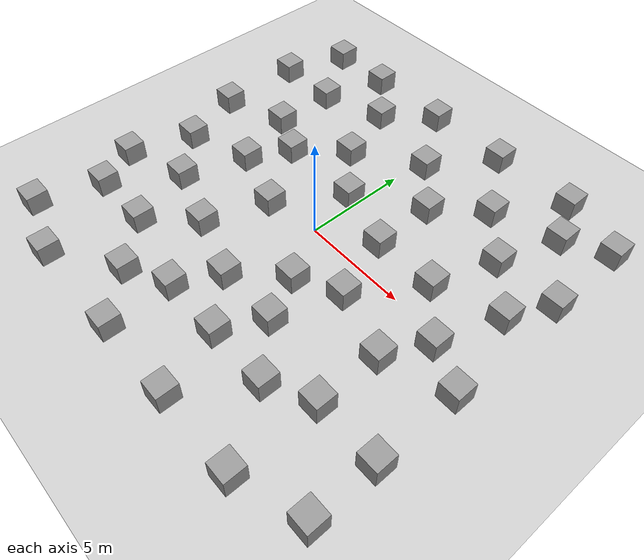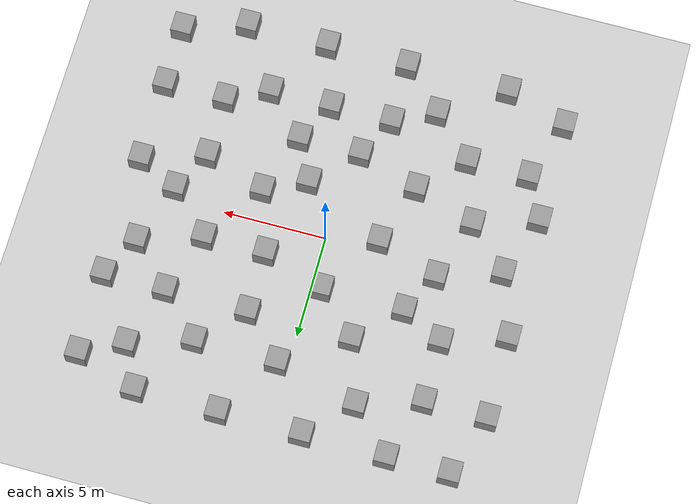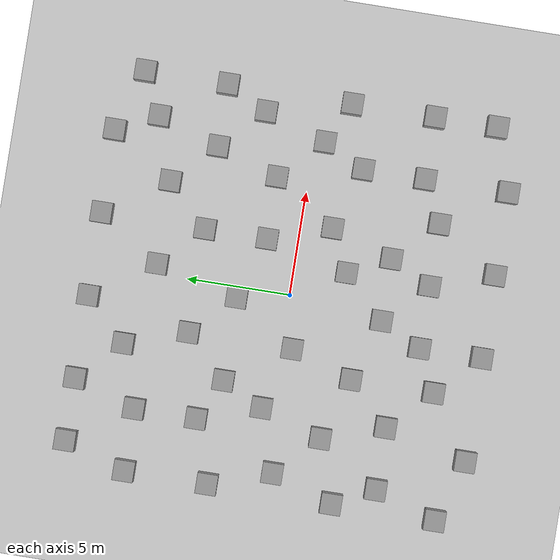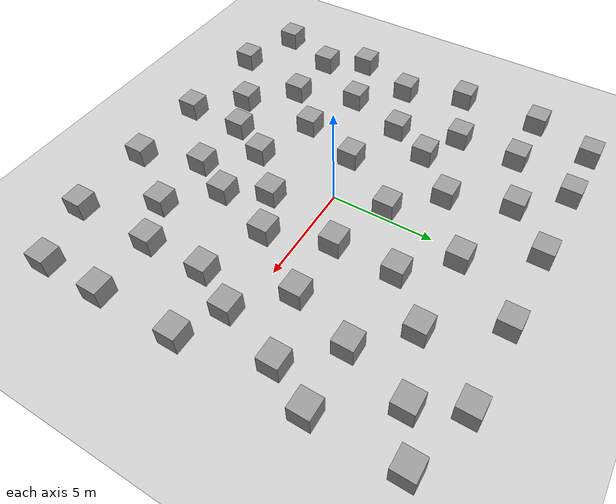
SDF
<sdf version="1.6">
 <world name="default">
  <light name="sun" type="directional">
   <pose>0 0 10 0 0 0</pose>
   <diffuse>0.8 0.8 0.8 1</diffuse>
   <specular>0.1 0.1 0.1 1</specular>
   <attenuation>
    <range>1000</range>
    <constant>0.9</constant>
    <linear>0.01</linear>
    <quadratic>0.001</quadratic>
   </attenuation>
   <direction>0.5 0.5 -1</direction>
  </light>
  <model name="ground_plane">
   <static>1</static>
   <link name="link">
    <collision name="collision">
     <geometry><plane><normal>0 0 1</normal><size>0.1 0.1</size></plane></geometry>
     <surface><friction><ode><mu>100</mu><mu2>50</mu2></ode></friction></surface>
    </collision>
    <visual name="visual">
     <cast_shadows>0</cast_shadows>
     <geometry><plane><normal>0 0 1</normal><size>0.1 0.1</size></plane></geometry>
     <material>
      <script><uri>file://media/materials/scripts/gazebo.material</uri><name>Gazebo/Grey</name></script>
     </material>
    </visual>
   </link>
  </model>
  <gravity>0 0 -9.8</gravity>
  <magnetic_field>0 0 0</magnetic_field>
  <atmosphere type="adiabatic"/>
  <physics name="default_physics" default="0" type="ode">
   <max_step_size>0.001</max_step_size>
   <real_time_factor>1</real_time_factor>
   <real_time_update_rate>1000</real_time_update_rate>
  </physics>
  <scene><ambient>0.4 0.4 0.4 1</ambient><background>0.7 0.7 0.7 1</background><shadows>1</shadows></scene>
  <spherical_coordinates>
   <surface_model>EARTH_WGS84</surface_model>
   <latitude_deg>0</latitude_deg>
   <longitude_deg>0</longitude_deg>
   <elevation>0</elevation>
   <heading_deg>0</heading_deg>
  </spherical_coordinates>
  <model name="unit_box_1">
   <pose>-0.5 2.5 0.5 0 0 0</pose>
   <link name="link">
    <inertial>
     <mass>1</mass>
     <inertia>
      <ixx>0.166667</ixx>
      <ixy>0</ixy>
      <ixz>0</ixz>
      <iyy>0.166667</iyy>
      <iyz>0</iyz>
      <izz>0.166667</izz>
     </inertia>
    </inertial>
    <collision name="collision"><geometry><box><size>1 1 1</size></box></geometry></collision>
    <visual name="visual">
     <geometry><box><size>1 1 1</size></box></geometry>
     <material>
      <script><name>Gazebo/Grey</name><uri>file://media/materials/scripts/gazebo.material</uri></script>
     </material>
    </visual>
   </link>
  </model>
  <model name="unit_box_2">
   <pose>-2.5 -0.5 0.5 0 0 0</pose>
   <link name="link">
    <inertial>
     <mass>1</mass>
     <inertia>
      <ixx>0.166667</ixx>
      <ixy>0</ixy>
      <ixz>0</ixz>
      <iyy>0.166667</iyy>
      <iyz>0</iyz>
      <izz>0.166667</izz>
     </inertia>
    </inertial>
    <collision name="collision"><geometry><box><size>1 1 1</size></box></geometry></collision>
    <visual name="visual">
     <geometry><box><size>1 1 1</size></box></geometry>
     <material>
      <script><name>Gazebo/Grey</name><uri>file://media/materials/scripts/gazebo.material</uri></script>
     </material>
    </visual>
   </link>
  </model>
  <model name="unit_box_3">
   <pose>1.5 -2.5 0.5 0 0 0</pose>
   <link name="link">
    <inertial>
     <mass>1</mass>
     <inertia>
      <ixx>0.166667</ixx>
      <ixy>0</ixy>
      <ixz>0</ixz>
      <iyy>0.166667</iyy>
      <iyz>0</iyz>
      <izz>0.166667</izz>
     </inertia>
    </inertial>
    <collision name="collision"><geometry><box><size>1 1 1</size></box></geometry></collision>
    <visual name="visual">
     <geometry><box><size>1 1 1</size></box></geometry>
     <material>
      <script><name>Gazebo/Grey</name><uri>file://media/materials/scripts/gazebo.material</uri></script>
     </material>
    </visual>
   </link>
  </model>
  <model name="unit_box_4">
   <pose>-0.5 -4.5 0.5 0 0 0</pose>
   <link name="link">
    <inertial>
     <mass>1</mass>
     <inertia>
      <ixx>0.166667</ixx>
      <ixy>0</ixy>
      <ixz>0</ixz>
      <iyy>0.166667</iyy>
      <iyz>0</iyz>
      <izz>0.166667</izz>
     </inertia>
    </inertial>
    <collision name="collision"><geometry><box><size>1 1 1</size></box></geometry></collision>
    <visual name="visual">
     <geometry><box><size>1 1 1</size></box></geometry>
     <material>
      <script><name>Gazebo/Grey</name><uri>file://media/materials/scripts/gazebo.material</uri></script>
     </material>
    </visual>
   </link>
  </model>
  <model name="unit_box_5">
   <pose>-3.5 -3.5 0.5 0 0 0</pose>
   <link name="link">
    <inertial>
     <mass>1</mass>
     <inertia>
      <ixx>0.166667</ixx>
      <ixy>0</ixy>
      <ixz>0</ixz>
      <iyy>0.166667</iyy>
      <iyz>0</iyz>
      <izz>0.166667</izz>
     </inertia>
    </inertial>
    <collision name="collision"><geometry><box><size>1 1 1</size></box></geometry></collision>
    <visual name="visual">
     <geometry><box><size>1 1 1</size></box></geometry>
     <material>
      <script><name>Gazebo/Grey</name><uri>file://media/materials/scripts/gazebo.material</uri></script>
     </material>
    </visual>
   </link>
  </model>
  <model name="unit_box_6">
   <pose>5.5 1.5 0.5 0 0 0</pose>
   <link name="link">
    <inertial>
     <mass>1</mass>
     <inertia>
      <ixx>0.166667</ixx>
      <ixy>0</ixy>
      <ixz>0</ixz>
      <iyy>0.166667</iyy>
      <iyz>0</iyz>
      <izz>0.166667</izz>
     </inertia>
    </inertial>
    <collision name="collision"><geometry><box><size>1 1 1</size></box></geometry></collision>
    <visual name="visual">
     <geometry><box><size>1 1 1</size></box></geometry>
     <material>
      <script><name>Gazebo/Grey</name><uri>file://media/materials/scripts/gazebo.material</uri></script>
     </material>
    </visual>
   </link>
  </model>
  <model name="unit_box_7">
   <pose>6.5 -2.5 0.5 0 0 0</pose>
   <link name="link">
    <inertial>
     <mass>1</mass>
     <inertia>
      <ixx>0.166667</ixx>
      <ixy>0</ixy>
      <ixz>0</ixz>
      <iyy>0.166667</iyy>
      <iyz>0</iyz>
      <izz>0.166667</izz>
     </inertia>
    </inertial>
    <collision name="collision"><geometry><box><size>1 1 1</size></box></geometry></collision>
    <visual name="visual">
     <geometry><box><size>1 1 1</size></box></geometry>
     <material>
      <script><name>Gazebo/Grey</name><uri>file://media/materials/scripts/gazebo.material</uri></script>
     </material>
    </visual>
   </link>
  </model>
  <model name="unit_box_8">
   <pose>7.5 -0.5 0.5 0 0 0</pose>
   <link name="link">
    <inertial>
     <mass>1</mass>
     <inertia>
      <ixx>0.166667</ixx>
      <ixy>0</ixy>
      <ixz>0</ixz>
      <iyy>0.166667</iyy>
      <iyz>0</iyz>
      <izz>0.166667</izz>
     </inertia>
    </inertial>
    <collision name="collision"><geometry><box><size>1 1 1</size></box></geometry></collision>
    <visual name="visual">
     <geometry><box><size>1 1 1</size></box></geometry>
     <material>
      <script><name>Gazebo/Grey</name><uri>file://media/materials/scripts/gazebo.material</uri></script>
     </material>
    </visual>
   </link>
  </model>
  <model name="unit_box_9">
   <pose>-4.5 2.5 0.5 0 0 0</pose>
   <link name="link">
    <inertial>
     <mass>1</mass>
     <inertia>
      <ixx>0.166667</ixx>
      <ixy>0</ixy>
      <ixz>0</ixz>
      <iyy>0.166667</iyy>
      <iyz>0</iyz>
      <izz>0.166667</izz>
     </inertia>
    </inertial>
    <collision name="collision"><geometry><box><size>1 1 1</size></box></geometry></collision>
    <visual name="visual">
     <geometry><box><size>1 1 1</size></box></geometry>
     <material>
      <script><name>Gazebo/Grey</name><uri>file://media/materials/scripts/gazebo.material</uri></script>
     </material>
    </visual>
   </link>
  </model>
  <model name="unit_box_10">
   <pose>-2.5 4.5 0.5 0 0 0</pose>
   <link name="link">
    <inertial>
     <mass>1</mass>
     <inertia>
      <ixx>0.166667</ixx>
      <ixy>0</ixy>
      <ixz>0</ixz>
      <iyy>0.166667</iyy>
      <iyz>0</iyz>
      <izz>0.166667</izz>
     </inertia>
    </inertial>
    <collision name="collision"><geometry><box><size>1 1 1</size></box></geometry></collision>
    <visual name="visual">
     <geometry><box><size>1 1 1</size></box></geometry>
     <material>
      <script><name>Gazebo/Grey</name><uri>file://media/materials/scripts/gazebo.material</uri></script>
     </material>
    </visual>
   </link>
  </model>
  <model name="unit_box_11">
   <pose>2.5 4.5 0.5 0 0 0</pose>
   <link name="link">
    <inertial>
     <mass>1</mass>
     <inertia>
      <ixx>0.166667</ixx>
      <ixy>0</ixy>
      <ixz>0</ixz>
      <iyy>0.166667</iyy>
      <iyz>0</iyz>
      <izz>0.166667</izz>
     </inertia>
    </inertial>
    <collision name="collision"><geometry><box><size>1 1 1</size></box></geometry></collision>
    <visual name="visual">
     <geometry><box><size>1 1 1</size></box></geometry>
     <material>
      <script><name>Gazebo/Grey</name><uri>file://media/materials/scripts/gazebo.material</uri></script>
     </material>
    </visual>
   </link>
  </model>
  <model name="unit_box_12">
   <pose>6.5 4.5 0.5 0 0 0</pose>
   <link name="link">
    <inertial>
     <mass>1</mass>
     <inertia>
      <ixx>0.166667</ixx>
      <ixy>0</ixy>
      <ixz>0</ixz>
      <iyy>0.166667</iyy>
      <iyz>0</iyz>
      <izz>0.166667</izz>
     </inertia>
    </inertial>
    <collision name="collision"><geometry><box><size>1 1 1</size></box></geometry></collision>
    <visual name="visual">
     <geometry><box><size>1 1 1</size></box></geometry>
     <material>
      <script><name>Gazebo/Grey</name><uri>file://media/materials/scripts/gazebo.material</uri></script>
     </material>
    </visual>
   </link>
  </model>
  <model name="unit_box_13">
   <pose>4.5 6.5 0.5 0 0 0</pose>
   <link name="link">
    <inertial>
     <mass>1</mass>
     <inertia>
      <ixx>0.166667</ixx>
      <ixy>0</ixy>
      <ixz>0</ixz>
      <iyy>0.166667</iyy>
      <iyz>0</iyz>
      <izz>0.166667</izz>
     </inertia>
    </inertial>
    <collision name="collision"><geometry><box><size>1 1 1</size></box></geometry></collision>
    <visual name="visual">
     <geometry><box><size>1 1 1</size></box></geometry>
     <material>
      <script><name>Gazebo/Grey</name><uri>file://media/materials/scripts/gazebo.material</uri></script>
     </material>
    </visual>
   </link>
  </model>
  <model name="unit_box_14">
   <pose>8.5 2.5 0.5 0 0 0</pose>
   <link name="link">
    <inertial>
     <mass>1</mass>
     <inertia>
      <ixx>0.166667</ixx>
      <ixy>0</ixy>
      <ixz>0</ixz>
      <iyy>0.166667</iyy>
      <iyz>0</iyz>
      <izz>0.166667</izz>
     </inertia>
    </inertial>
    <collision name="collision"><geometry><box><size>1 1 1</size></box></geometry></collision>
    <visual name="visual">
     <geometry><box><size>1 1 1</size></box></geometry>
     <material>
      <script><name>Gazebo/Grey</name><uri>file://media/materials/scripts/gazebo.material</uri></script>
     </material>
    </visual>
   </link>
  </model>
  <model name="unit_box_15">
   <pose>9.5 4.5 0.5 0 0 0</pose>
   <link name="link">
    <inertial>
     <mass>1</mass>
     <inertia>
      <ixx>0.166667</ixx>
      <ixy>0</ixy>
      <ixz>0</ixz>
      <iyy>0.166667</iyy>
      <iyz>0</iyz>
      <izz>0.166667</izz>
     </inertia>
    </inertial>
    <collision name="collision"><geometry><box><size>1 1 1</size></box></geometry></collision>
    <visual name="visual">
     <geometry><box><size>1 1 1</size></box></geometry>
     <material>
      <script><name>Gazebo/Grey</name><uri>file://media/materials/scripts/gazebo.material</uri></script>
     </material>
    </visual>
   </link>
  </model>
  <model name="unit_box_16">
   <pose>9.5 8.5 0.5 0 0 0</pose>
   <link name="link">
    <inertial>
     <mass>1</mass>
     <inertia>
      <ixx>0.166667</ixx>
      <ixy>0</ixy>
      <ixz>0</ixz>
      <iyy>0.166667</iyy>
      <iyz>0</iyz>
      <izz>0.166667</izz>
     </inertia>
    </inertial>
    <collision name="collision"><geometry><box><size>1 1 1</size></box></geometry></collision>
    <visual name="visual">
     <geometry><box><size>1 1 1</size></box></geometry>
     <material>
      <script><name>Gazebo/Grey</name><uri>file://media/materials/scripts/gazebo.material</uri></script>
     </material>
    </visual>
   </link>
  </model>
  <model name="unit_box_17">
   <pose>6.5 9.5 0.5 0 0 0</pose>
   <link name="link">
    <inertial>
     <mass>1</mass>
     <inertia>
      <ixx>0.166667</ixx>
      <ixy>0</ixy>
      <ixz>0</ixz>
      <iyy>0.166667</iyy>
      <iyz>0</iyz>
      <izz>0.166667</izz>
     </inertia>
    </inertial>
    <collision name="collision"><geometry><box><size>1 1 1</size></box></geometry></collision>
    <visual name="visual">
     <geometry><box><size>1 1 1</size></box></geometry>
     <material>
      <script><name>Gazebo/Grey</name><uri>file://media/materials/scripts/gazebo.material</uri></script>
     </material>
    </visual>
   </link>
  </model>
  <model name="unit_box_18">
   <pose>7.5 7.5 0.5 0 0 0</pose>
   <link name="link">
    <inertial>
     <mass>1</mass>
     <inertia>
      <ixx>0.166667</ixx>
      <ixy>0</ixy>
      <ixz>0</ixz>
      <iyy>0.166667</iyy>
      <iyz>0</iyz>
      <izz>0.166667</izz>
     </inertia>
    </inertial>
    <collision name="collision"><geometry><box><size>1 1 1</size></box></geometry></collision>
    <visual name="visual">
     <geometry><box><size>1 1 1</size></box></geometry>
     <material>
      <script><name>Gazebo/Grey</name><uri>file://media/materials/scripts/gazebo.material</uri></script>
     </material>
    </visual>
   </link>
  </model>
  <model name="unit_box_19">
   <pose>2.5 9.5 0.5 0 0 0</pose>
   <link name="link">
    <inertial>
     <mass>1</mass>
     <inertia>
      <ixx>0.166667</ixx>
      <ixy>0</ixy>
      <ixz>0</ixz>
      <iyy>0.166667</iyy>
      <iyz>0</iyz>
      <izz>0.166667</izz>
     </inertia>
    </inertial>
    <collision name="collision"><geometry><box><size>1 1 1</size></box></geometry></collision>
    <visual name="visual">
     <geometry><box><size>1 1 1</size></box></geometry>
     <material>
      <script><name>Gazebo/Grey</name><uri>file://media/materials/scripts/gazebo.material</uri></script>
     </material>
    </visual>
   </link>
  </model>
  <model name="unit_box_20">
   <pose>-1.5 9.5 0.5 0 0 0</pose>
   <link name="link">
    <inertial>
     <mass>1</mass>
     <inertia>
      <ixx>0.166667</ixx>
      <ixy>0</ixy>
      <ixz>0</ixz>
      <iyy>0.166667</iyy>
      <iyz>0</iyz>
      <izz>0.166667</izz>
     </inertia>
    </inertial>
    <collision name="collision"><geometry><box><size>1 1 1</size></box></geometry></collision>
    <visual name="visual">
     <geometry><box><size>1 1 1</size></box></geometry>
     <material>
      <script><name>Gazebo/Grey</name><uri>file://media/materials/scripts/gazebo.material</uri></script>
     </material>
    </visual>
   </link>
  </model>
  <model name="unit_box_21">
   <pose>0.5 6.5 0.5 0 0 0</pose>
   <link name="link">
    <inertial>
     <mass>1</mass>
     <inertia>
      <ixx>0.166667</ixx>
      <ixy>0</ixy>
      <ixz>0</ixz>
      <iyy>0.166667</iyy>
      <iyz>0</iyz>
      <izz>0.166667</izz>
     </inertia>
    </inertial>
    <collision name="collision"><geometry><box><size>1 1 1</size></box></geometry></collision>
    <visual name="visual">
     <geometry><box><size>1 1 1</size></box></geometry>
     <material>
      <script><name>Gazebo/Grey</name><uri>file://media/materials/scripts/gazebo.material</uri></script>
     </material>
    </visual>
   </link>
  </model>
  <model name="unit_box_22">
   <pose>-3.5 7.5 0.5 0 0 0</pose>
   <link name="link">
    <inertial>
     <mass>1</mass>
     <inertia>
      <ixx>0.166667</ixx>
      <ixy>0</ixy>
      <ixz>0</ixz>
      <iyy>0.166667</iyy>
      <iyz>0</iyz>
      <izz>0.166667</izz>
     </inertia>
    </inertial>
    <collision name="collision"><geometry><box><size>1 1 1</size></box></geometry></collision>
    <visual name="visual">
     <geometry><box><size>1 1 1</size></box></geometry>
     <material>
      <script><name>Gazebo/Grey</name><uri>file://media/materials/scripts/gazebo.material</uri></script>
     </material>
    </visual>
   </link>
  </model>
  <model name="unit_box_23">
   <pose>-5.5 9.5 0.5 0 0 0</pose>
   <link name="link">
    <inertial>
     <mass>1</mass>
     <inertia>
      <ixx>0.166667</ixx>
      <ixy>0</ixy>
      <ixz>0</ixz>
      <iyy>0.166667</iyy>
      <iyz>0</iyz>
      <izz>0.166667</izz>
     </inertia>
    </inertial>
    <collision name="collision"><geometry><box><size>1 1 1</size></box></geometry></collision>
    <visual name="visual">
     <geometry><box><size>1 1 1</size></box></geometry>
     <material>
      <script><name>Gazebo/Grey</name><uri>file://media/materials/scripts/gazebo.material</uri></script>
     </material>
    </visual>
   </link>
  </model>
  <model name="unit_box_24">
   <pose>-8.5 9.5 0.5 0 0 0</pose>
   <link name="link">
    <inertial>
     <mass>1</mass>
     <inertia>
      <ixx>0.166667</ixx>
      <ixy>0</ixy>
      <ixz>0</ixz>
      <iyy>0.166667</iyy>
      <iyz>0</iyz>
      <izz>0.166667</izz>
     </inertia>
    </inertial>
    <collision name="collision"><geometry><box><size>1 1 1</size></box></geometry></collision>
    <visual name="visual">
     <geometry><box><size>1 1 1</size></box></geometry>
     <material>
      <script><name>Gazebo/Grey</name><uri>file://media/materials/scripts/gazebo.material</uri></script>
     </material>
    </visual>
   </link>
  </model>
  <model name="unit_box_25">
   <pose>-9.5 6.5 0.5 0 0 0</pose>
   <link name="link">
    <inertial>
     <mass>1</mass>
     <inertia>
      <ixx>0.166667</ixx>
      <ixy>0</ixy>
      <ixz>0</ixz>
      <iyy>0.166667</iyy>
      <iyz>0</iyz>
      <izz>0.166667</izz>
     </inertia>
    </inertial>
    <collision name="collision"><geometry><box><size>1 1 1</size></box></geometry></collision>
    <visual name="visual">
     <geometry><box><size>1 1 1</size></box></geometry>
     <material>
      <script><name>Gazebo/Grey</name><uri>file://media/materials/scripts/gazebo.material</uri></script>
     </material>
    </visual>
   </link>
  </model>
  <model name="unit_box_26">
   <pose>-6.5 6.5 0.5 0 0 0</pose>
   <link name="link">
    <inertial>
     <mass>1</mass>
     <inertia>
      <ixx>0.166667</ixx>
      <ixy>0</ixy>
      <ixz>0</ixz>
      <iyy>0.166667</iyy>
      <iyz>0</iyz>
      <izz>0.166667</izz>
     </inertia>
    </inertial>
    <collision name="collision"><geometry><box><size>1 1 1</size></box></geometry></collision>
    <visual name="visual">
     <geometry><box><size>1 1 1</size></box></geometry>
     <material>
      <script><name>Gazebo/Grey</name><uri>file://media/materials/scripts/gazebo.material</uri></script>
     </material>
    </visual>
   </link>
  </model>
  <model name="unit_box_27">
   <pose>-6.5 3.5 0.5 0 0 0</pose>
   <link name="link">
    <inertial>
     <mass>1</mass>
     <inertia>
      <ixx>0.166667</ixx>
      <ixy>0</ixy>
      <ixz>0</ixz>
      <iyy>0.166667</iyy>
      <iyz>0</iyz>
      <izz>0.166667</izz>
     </inertia>
    </inertial>
    <collision name="collision"><geometry><box><size>1 1 1</size></box></geometry></collision>
    <visual name="visual">
     <geometry><box><size>1 1 1</size></box></geometry>
     <material>
      <script><name>Gazebo/Grey</name><uri>file://media/materials/scripts/gazebo.material</uri></script>
     </material>
    </visual>
   </link>
  </model>
  <model name="unit_box_28">
   <pose>-9.5 2.5 0.5 0 0 0</pose>
   <link name="link">
    <inertial>
     <mass>1</mass>
     <inertia>
      <ixx>0.166667</ixx>
      <ixy>0</ixy>
      <ixz>0</ixz>
      <iyy>0.166667</iyy>
      <iyz>0</iyz>
      <izz>0.166667</izz>
     </inertia>
    </inertial>
    <collision name="collision"><geometry><box><size>1 1 1</size></box></geometry></collision>
    <visual name="visual">
     <geometry><box><size>1 1 1</size></box></geometry>
     <material>
      <script><name>Gazebo/Grey</name><uri>file://media/materials/scripts/gazebo.material</uri></script>
     </material>
    </visual>
   </link>
  </model>
  <model name="unit_box_29">
   <pose>-5.5 0.5 0.5 0 0 0</pose>
   <link name="link">
    <inertial>
     <mass>1</mass>
     <inertia>
      <ixx>0.166667</ixx>
      <ixy>0</ixy>
      <ixz>0</ixz>
      <iyy>0.166667</iyy>
      <iyz>0</iyz>
      <izz>0.166667</izz>
     </inertia>
    </inertial>
    <collision name="collision"><geometry><box><size>1 1 1</size></box></geometry></collision>
    <visual name="visual">
     <geometry><box><size>1 1 1</size></box></geometry>
     <material>
      <script><name>Gazebo/Grey</name><uri>file://media/materials/scripts/gazebo.material</uri></script>
     </material>
    </visual>
   </link>
  </model>
  <model name="unit_box_30">
   <pose>-8.5 -0.5 0.5 0 0 0</pose>
   <link name="link">
    <inertial>
     <mass>1</mass>
     <inertia>
      <ixx>0.166667</ixx>
      <ixy>0</ixy>
      <ixz>0</ixz>
      <iyy>0.166667</iyy>
      <iyz>0</iyz>
      <izz>0.166667</izz>
     </inertia>
    </inertial>
    <collision name="collision"><geometry><box><size>1 1 1</size></box></geometry></collision>
    <visual name="visual">
     <geometry><box><size>1 1 1</size></box></geometry>
     <material>
      <script><name>Gazebo/Grey</name><uri>file://media/materials/scripts/gazebo.material</uri></script>
     </material>
    </visual>
   </link>
  </model>
  <model name="unit_box_31">
   <pose>-9.5 -3.5 0.5 0 0 0</pose>
   <link name="link">
    <inertial>
     <mass>1</mass>
     <inertia>
      <ixx>0.166667</ixx>
      <ixy>0</ixy>
      <ixz>0</ixz>
      <iyy>0.166667</iyy>
      <iyz>0</iyz>
      <izz>0.166667</izz>
     </inertia>
    </inertial>
    <collision name="collision"><geometry><box><size>1 1 1</size></box></geometry></collision>
    <visual name="visual">
     <geometry><box><size>1 1 1</size></box></geometry>
     <material>
      <script><name>Gazebo/Grey</name><uri>file://media/materials/scripts/gazebo.material</uri></script>
     </material>
    </visual>
   </link>
  </model>
  <model name="unit_box_32">
   <pose>-6.5 -2.5 0.5 0 0 0</pose>
   <link name="link">
    <inertial>
     <mass>1</mass>
     <inertia>
      <ixx>0.166667</ixx>
      <ixy>0</ixy>
      <ixz>0</ixz>
      <iyy>0.166667</iyy>
      <iyz>0</iyz>
      <izz>0.166667</izz>
     </inertia>
    </inertial>
    <collision name="collision"><geometry><box><size>1 1 1</size></box></geometry></collision>
    <visual name="visual">
     <geometry><box><size>1 1 1</size></box></geometry>
     <material>
      <script><name>Gazebo/Grey</name><uri>file://media/materials/scripts/gazebo.material</uri></script>
     </material>
    </visual>
   </link>
  </model>
  <model name="unit_box_33">
   <pose>-5.5 -5.5 0.5 0 0 0</pose>
   <link name="link">
    <inertial>
     <mass>1</mass>
     <inertia>
      <ixx>0.166667</ixx>
      <ixy>0</ixy>
      <ixz>0</ixz>
      <iyy>0.166667</iyy>
      <iyz>0</iyz>
      <izz>0.166667</izz>
     </inertia>
    </inertial>
    <collision name="collision"><geometry><box><size>1 1 1</size></box></geometry></collision>
    <visual name="visual">
     <geometry><box><size>1 1 1</size></box></geometry>
     <material>
      <script><name>Gazebo/Grey</name><uri>file://media/materials/scripts/gazebo.material</uri></script>
     </material>
    </visual>
   </link>
  </model>
  <model name="unit_box_34">
   <pose>-8.5 -5.5 0.5 0 0 0</pose>
   <link name="link">
    <inertial>
     <mass>1</mass>
     <inertia>
      <ixx>0.166667</ixx>
      <ixy>0</ixy>
      <ixz>0</ixz>
      <iyy>0.166667</iyy>
      <iyz>0</iyz>
      <izz>0.166667</izz>
     </inertia>
    </inertial>
    <collision name="collision"><geometry><box><size>1 1 1</size></box></geometry></collision>
    <visual name="visual">
     <geometry><box><size>1 1 1</size></box></geometry>
     <material>
      <script><name>Gazebo/Grey</name><uri>file://media/materials/scripts/gazebo.material</uri></script>
     </material>
    </visual>
   </link>
  </model>
  <model name="unit_box_35">
   <pose>-9.5 -8.5 0.5 0 0 0</pose>
   <link name="link">
    <inertial>
     <mass>1</mass>
     <inertia>
      <ixx>0.166667</ixx>
      <ixy>0</ixy>
      <ixz>0</ixz>
      <iyy>0.166667</iyy>
      <iyz>0</iyz>
      <izz>0.166667</izz>
     </inertia>
    </inertial>
    <collision name="collision"><geometry><box><size>1 1 1</size></box></geometry></collision>
    <visual name="visual">
     <geometry><box><size>1 1 1</size></box></geometry>
     <material>
      <script><name>Gazebo/Grey</name><uri>file://media/materials/scripts/gazebo.material</uri></script>
     </material>
    </visual>
   </link>
  </model>
  <model name="unit_box_36">
   <pose>-6.5 -9.5 0.5 0 0 0</pose>
   <link name="link">
    <inertial>
     <mass>1</mass>
     <inertia>
      <ixx>0.166667</ixx>
      <ixy>0</ixy>
      <ixz>0</ixz>
      <iyy>0.166667</iyy>
      <iyz>0</iyz>
      <izz>0.166667</izz>
     </inertia>
    </inertial>
    <collision name="collision"><geometry><box><size>1 1 1</size></box></geometry></collision>
    <visual name="visual">
     <geometry><box><size>1 1 1</size></box></geometry>
     <material>
      <script><name>Gazebo/Grey</name><uri>file://media/materials/scripts/gazebo.material</uri></script>
     </material>
    </visual>
   </link>
  </model>
  <model name="unit_box_37">
   <pose>-3.5 -7.5 0.5 0 0 0</pose>
   <link name="link">
    <inertial>
     <mass>1</mass>
     <inertia>
      <ixx>0.166667</ixx>
      <ixy>0</ixy>
      <ixz>0</ixz>
      <iyy>0.166667</iyy>
      <iyz>0</iyz>
      <izz>0.166667</izz>
     </inertia>
    </inertial>
    <collision name="collision"><geometry><box><size>1 1 1</size></box></geometry></collision>
    <visual name="visual">
     <geometry><box><size>1 1 1</size></box></geometry>
     <material>
      <script><name>Gazebo/Grey</name><uri>file://media/materials/scripts/gazebo.material</uri></script>
     </material>
    </visual>
   </link>
  </model>
  <model name="unit_box_38">
   <pose>-1.5 -9.5 0.5 0 0 0</pose>
   <link name="link">
    <inertial>
     <mass>1</mass>
     <inertia>
      <ixx>0.166667</ixx>
      <ixy>0</ixy>
      <ixz>0</ixz>
      <iyy>0.166667</iyy>
      <iyz>0</iyz>
      <izz>0.166667</izz>
     </inertia>
    </inertial>
    <collision name="collision"><geometry><box><size>1 1 1</size></box></geometry></collision>
    <visual name="visual">
     <geometry><box><size>1 1 1</size></box></geometry>
     <material>
      <script><name>Gazebo/Grey</name><uri>file://media/materials/scripts/gazebo.material</uri></script>
     </material>
    </visual>
   </link>
  </model>
  <model name="unit_box_39">
   <pose>1.5 -6.5 0.5 0 0 0</pose>
   <link name="link">
    <inertial>
     <mass>1</mass>
     <inertia>
      <ixx>0.166667</ixx>
      <ixy>0</ixy>
      <ixz>0</ixz>
      <iyy>0.166667</iyy>
      <iyz>0</iyz>
      <izz>0.166667</izz>
     </inertia>
    </inertial>
    <collision name="collision"><geometry><box><size>1 1 1</size></box></geometry></collision>
    <visual name="visual">
     <geometry><box><size>1 1 1</size></box></geometry>
     <material>
      <script><name>Gazebo/Grey</name><uri>file://media/materials/scripts/gazebo.material</uri></script>
     </material>
    </visual>
   </link>
  </model>
  <model name="unit_box_40">
   <pose>2.5 -9.5 0.5 0 0 0</pose>
   <link name="link">
    <inertial>
     <mass>1</mass>
     <inertia>
      <ixx>0.166667</ixx>
      <ixy>0</ixy>
      <ixz>0</ixz>
      <iyy>0.166667</iyy>
      <iyz>0</iyz>
      <izz>0.166667</izz>
     </inertia>
    </inertial>
    <collision name="collision"><geometry><box><size>1 1 1</size></box></geometry></collision>
    <visual name="visual">
     <geometry><box><size>1 1 1</size></box></geometry>
     <material>
      <script><name>Gazebo/Grey</name><uri>file://media/materials/scripts/gazebo.material</uri></script>
     </material>
    </visual>
   </link>
  </model>
  <model name="unit_box_41">
   <pose>2.5 -4.5 0.5 0 0 0</pose>
   <link name="link">
    <inertial>
     <mass>1</mass>
     <inertia>
      <ixx>0.166667</ixx>
      <ixy>0</ixy>
      <ixz>0</ixz>
      <iyy>0.166667</iyy>
      <iyz>0</iyz>
      <izz>0.166667</izz>
     </inertia>
    </inertial>
    <collision name="collision"><geometry><box><size>1 1 1</size></box></geometry></collision>
    <visual name="visual">
     <geometry><box><size>1 1 1</size></box></geometry>
     <material>
      <script><name>Gazebo/Grey</name><uri>file://media/materials/scripts/gazebo.material</uri></script>
     </material>
    </visual>
   </link>
  </model>
  <model name="unit_box_42">
   <pose>4.5 -6.5 0.5 0 0 0</pose>
   <link name="link">
    <inertial>
     <mass>1</mass>
     <inertia>
      <ixx>0.166667</ixx>
      <ixy>0</ixy>
      <ixz>0</ixz>
      <iyy>0.166667</iyy>
      <iyz>0</iyz>
      <izz>0.166667</izz>
     </inertia>
    </inertial>
    <collision name="collision"><geometry><box><size>1 1 1</size></box></geometry></collision>
    <visual name="visual">
     <geometry><box><size>1 1 1</size></box></geometry>
     <material>
      <script><name>Gazebo/Grey</name><uri>file://media/materials/scripts/gazebo.material</uri></script>
     </material>
    </visual>
   </link>
  </model>
  <model name="unit_box_43">
   <pose>6.5 -9.5 0.5 0 0 0</pose>
   <link name="link">
    <inertial>
     <mass>1</mass>
     <inertia>
      <ixx>0.166667</ixx>
      <ixy>0</ixy>
      <ixz>0</ixz>
      <iyy>0.166667</iyy>
      <iyz>0</iyz>
      <izz>0.166667</izz>
     </inertia>
    </inertial>
    <collision name="collision"><geometry><box><size>1 1 1</size></box></geometry></collision>
    <visual name="visual">
     <geometry><box><size>1 1 1</size></box></geometry>
     <material>
      <script><name>Gazebo/Grey</name><uri>file://media/materials/scripts/gazebo.material</uri></script>
     </material>
    </visual>
   </link>
  </model>
  <model name="unit_box_44">
   <pose>9.5 -8.5 0.5 0 0 0</pose>
   <link name="link">
    <inertial>
     <mass>1</mass>
     <inertia>
      <ixx>0.166667</ixx>
      <ixy>0</ixy>
      <ixz>0</ixz>
      <iyy>0.166667</iyy>
      <iyz>0</iyz>
      <izz>0.166667</izz>
     </inertia>
    </inertial>
    <collision name="collision"><geometry><box><size>1 1 1</size></box></geometry></collision>
    <visual name="visual">
     <geometry><box><size>1 1 1</size></box></geometry>
     <material>
      <script><name>Gazebo/Grey</name><uri>file://media/materials/scripts/gazebo.material</uri></script>
     </material>
    </visual>
   </link>
  </model>
  <model name="unit_box_45">
   <pose>9.5 -5.5 0.5 0 0 0</pose>
   <link name="link">
    <inertial>
     <mass>1</mass>
     <inertia>
      <ixx>0.166667</ixx>
      <ixy>0</ixy>
      <ixz>0</ixz>
      <iyy>0.166667</iyy>
      <iyz>0</iyz>
      <izz>0.166667</izz>
     </inertia>
    </inertial>
    <collision name="collision"><geometry><box><size>1 1 1</size></box></geometry></collision>
    <visual name="visual">
     <geometry><box><size>1 1 1</size></box></geometry>
     <material>
      <script><name>Gazebo/Grey</name><uri>file://media/materials/scripts/gazebo.material</uri></script>
     </material>
    </visual>
   </link>
  </model>
  <model name="unit_box_46">
   <pose>9.5 -1.5 0.5 0 0 0</pose>
   <link name="link">
    <inertial>
     <mass>1</mass>
     <inertia>
      <ixx>0.166667</ixx>
      <ixy>0</ixy>
      <ixz>0</ixz>
      <iyy>0.166667</iyy>
      <iyz>0</iyz>
      <izz>0.166667</izz>
     </inertia>
    </inertial>
    <collision name="collision"><geometry><box><size>1 1 1</size></box></geometry></collision>
    <visual name="visual">
     <geometry><box><size>1 1 1</size></box></geometry>
     <material>
      <script><name>Gazebo/Grey</name><uri>file://media/materials/scripts/gazebo.material</uri></script>
     </material>
    </visual>
   </link>
  </model>
  <model name="unit_box_47">
   <pose>6.5 -5.5 0.5 0 0 0</pose>
   <link name="link">
    <inertial>
     <mass>1</mass>
     <inertia>
      <ixx>0.166667</ixx>
      <ixy>0</ixy>
      <ixz>0</ixz>
      <iyy>0.166667</iyy>
      <iyz>0</iyz>
      <izz>0.166667</izz>
     </inertia>
    </inertial>
    <collision name="collision"><geometry><box><size>1 1 1</size></box></geometry></collision>
    <visual name="visual">
     <geometry><box><size>1 1 1</size></box></geometry>
     <material>
      <script><name>Gazebo/Grey</name><uri>file://media/materials/scripts/gazebo.material</uri></script>
     </material>
    </visual>
   </link>
  </model>
  <model name="unit_box_48">
   <pose>-1.5 -6.5 0.5 0 0 0</pose>
   <link name="link">
    <inertial>
     <mass>1</mass>
     <inertia>
      <ixx>0.166667</ixx>
      <ixy>0</ixy>
      <ixz>0</ixz>
      <iyy>0.166667</iyy>
      <iyz>0</iyz>
      <izz>0.166667</izz>
     </inertia>
    </inertial>
    <collision name="collision"><geometry><box><size>1 1 1</size></box></geometry></collision>
    <visual name="visual">
     <geometry><box><size>1 1 1</size></box></geometry>
     <material>
      <script><name>Gazebo/Grey</name><uri>file://media/materials/scripts/gazebo.material</uri></script>
     </material>
    </visual>
   </link>
  </model>
  <model name="unit_box_49">
   <pose>2.5 1.5 0.5 0 0 0</pose>
   <link name="link">
    <inertial>
     <mass>1</mass>
     <inertia>
      <ixx>0.166667</ixx>
      <ixy>0</ixy>
      <ixz>0</ixz>
      <iyy>0.166667</iyy>
      <iyz>0</iyz>
      <izz>0.166667</izz>
     </inertia>
    </inertial>
    <collision name="collision"><geometry><box><size>1 1 1</size></box></geometry></collision>
    <visual name="visual">
     <geometry><box><size>1 1 1</size></box></geometry>
     <material>
      <script><name>Gazebo/Grey</name><uri>file://media/materials/scripts/gazebo.material</uri></script>
     </material>
    </visual>
   </link>
  </model>
  <model name="unit_box_50">
   <pose>3.5 -1.5 0.5 0 0 0</pose>
   <link name="link">
    <inertial>
     <mass>1</mass>
     <inertia>
      <ixx>0.166667</ixx>
      <ixy>0</ixy>
      <ixz>0</ixz>
      <iyy>0.166667</iyy>
      <iyz>0</iyz>
      <izz>0.166667</izz>
     </inertia>
    </inertial>
    <collision name="collision"><geometry><box><size>1 1 1</size></box></geometry></collision>
    <visual name="visual">
     <geometry><box><size>1 1 1</size></box></geometry>
     <material>
      <script><name>Gazebo/Grey</name><uri>file://media/materials/scripts/gazebo.material</uri></script>
     </material>
    </visual>
   </link>
  </model>
 </world>
</sdf>
